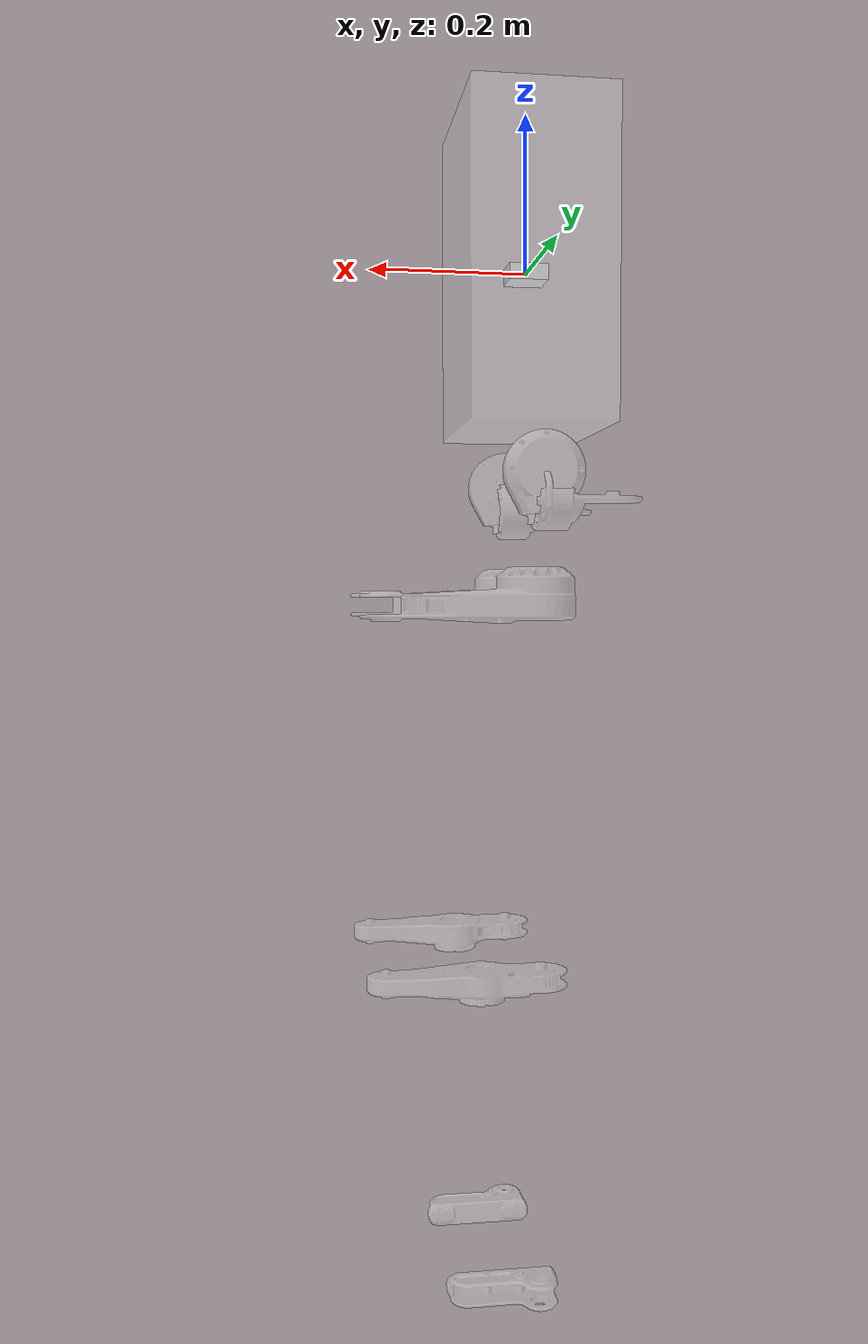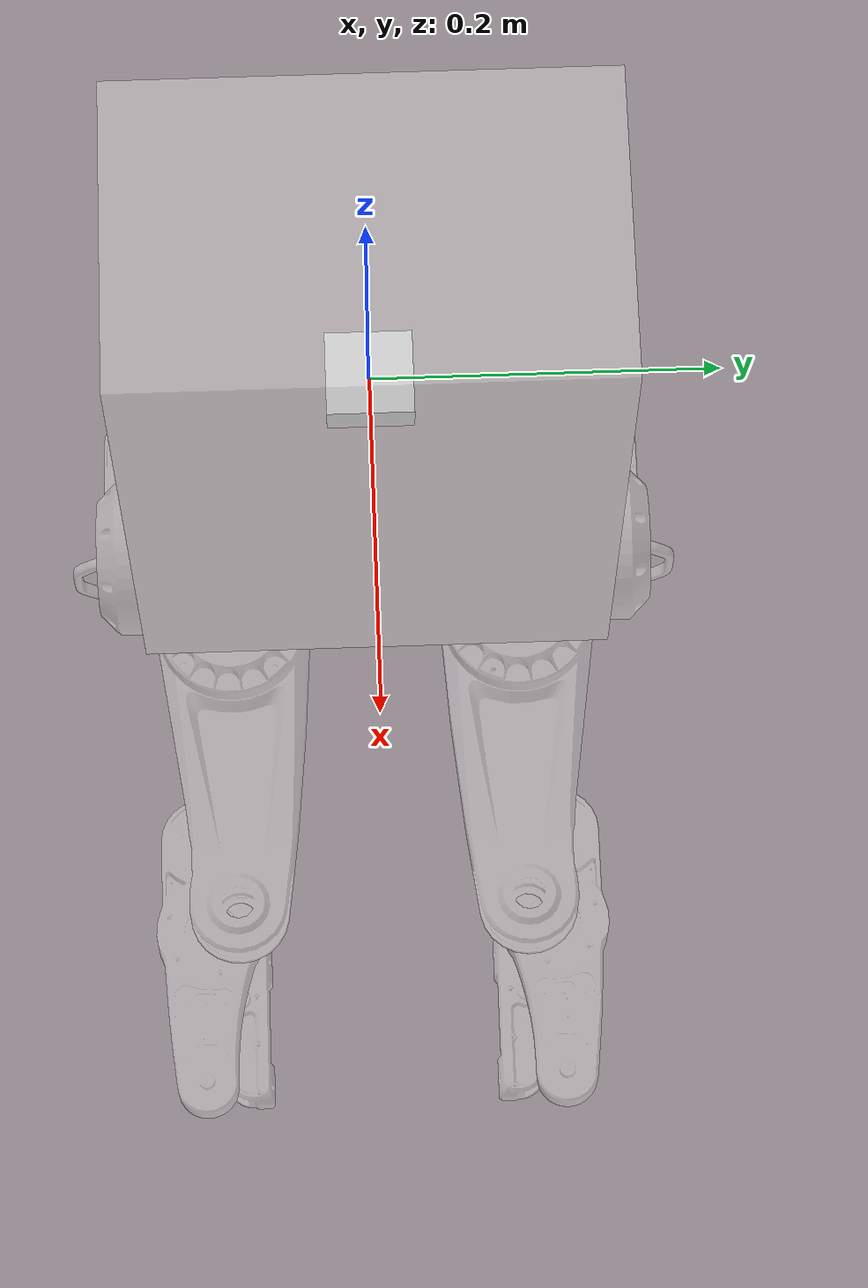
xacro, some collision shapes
<?xml version="1.0"?>

<robot name="gh1" xmlns:xacro="http://www.ros.org/wiki/xacro">
  <xacro:arg name="DEBUG" default="false" />

  <xacro:include filename="$(find gh1)/xacro/gazebo.xacro" />
  <!-- Rotor related joint and link is only for demonstrate location. -->
  <!-- Actually, the rotor will rotate and the joint is not fixed. Reduction ratio should be
  considered. -->

  <material name="black">
    <color rgba="0.0 0.0 0.0 1.0" />
  </material>
  <material name="blue">
    <color rgba="0.0 0.0 0.8 1.0" />
  </material>
  <material name="green">
    <color rgba="0.0 0.8 0.0 1.0" />
  </material>
  <material name="grey">
    <color rgba="0.2 0.2 0.2 1.0" />
  </material>
  <material name="silver">
    <color rgba="0.913725490196 0.913725490196 0.847058823529 1.0" />
  </material>
  <material name="orange">
    <color rgba="0.12 0.15 0.2 1.0" />
  </material>
  <material name="brown">
    <color rgba="0.870588235294 0.811764705882 0.764705882353 1.0" />
  </material>
  <material name="red">
    <color rgba="0.8 0.0 0.0 1.0" />
  </material>
  <material name="white">
    <color rgba="1.0 1.0 1.0 1.0" />
  </material>

  <!-- Debug mode will hung up the robot, use "true" or "false" to switch it. -->
  <xacro:if value="$(arg DEBUG)">
    <link name="world" />
    <joint name="base_static_joint" type="fixed">
      <origin rpy="0 0 0" xyz="0 0 0.0" />
      <parent link="world" />
      <child link="base" />
    </joint>
  </xacro:if>

  <link name="base">
    <visual>
      <origin rpy="0 0 0" xyz="0 0 0" />
      <geometry>
        <box size="0.001 0.001 0.001" />
      </geometry>
    </visual>
  </link>

  <joint name="floating_base" type="fixed">
    <origin rpy="0 0 0" xyz="0 0 0" />
    <parent link="base" />
    <child link="body" />
  </joint>

  <link name="body">
    <inertial>
      <origin
        xyz="-0.0057915 -8.0007E-06 0.16"
        rpy="0 0 0" />
      <mass
        value="23.55" />
      <inertia
        ixx="0.46786000"
        ixy="0"
        ixz="0"
        iyy="0.37758500"
        iyz="0"
        izz="0.21744500" />
    </inertial>
    <visual>
      <origin
        xyz="0 0 0"
        rpy="0 0 0" />
      <geometry>
        <mesh
          filename="/home/wl/Documents/simulation_all_ros2/src/robot_description/gh1/meshes/base_link.STL" />
      </geometry>
      <material
        name="">
        <color
          rgba="1 1 1 0.3" />
      </material>
    </visual>
    <!-- trunk -->
    <collision>
      <origin
        xyz="0 0 0"
        rpy="0 0 0" />
      <geometry>
        <box size="0.18 0.28 0.4" />
      </geometry>
    </collision>
    <!-- upper right arm -->
    <collision>
      <origin
        xyz="0 -0.24 0"
        rpy="-0.15 0 0" />
      <geometry>
        <cylinder radius="0.01" length="0.28" />
      </geometry>
    </collision>
    <!-- upper left arm -->
    <collision>
      <origin
        xyz="0 0.24 0"
        rpy="0.15 0 0" />
      <geometry>
        <cylinder radius="0.01" length="0.28" />
      </geometry>
    </collision>
    <!-- lower right arm -->
    <collision>
      <origin
        xyz="0.06 -0.3 -0.3"
        rpy="-0.3 -0.45 0" />
      <geometry>
        <cylinder radius="0.01" length="0.28" />
      </geometry>
    </collision>
    <!-- lower left arm -->
    <collision>
      <origin
        xyz="0.06 0.3 -0.3"
        rpy="0.3 -0.45 0" />
      <geometry>
        <cylinder radius="0.01" length="0.28" />
      </geometry>
    </collision>
  </link>

  <joint name="z_joint_imu" type="fixed">
    <origin xyz="-0.0 0 -0.0" rpy="0 0 0" />
    <parent link="body" />
    <child link="imu_link" />
  </joint>

  <link name="imu_link">
    <visual>
      <origin xyz="-0.0 0 -0.0" rpy="0 0 0" />
      <geometry>
        <box size="0.05 0.05 0.02" />
      </geometry>
      <material name="">
        <color rgba="0.75294 0.75294 0.75294 1" />
      </material>
    </visual>
  </link>

  <joint
    name="l_hip_roll"
    type="revolute">
    <origin
      xyz="-0.08275 0.135 -0.2975"
      rpy="0 0 0" />
    <parent
      link="body" />
    <child
      link="l_thigh_roll" />
    <axis
      xyz="1 0 0" />
    <limit
      lower="-0.17"
      upper="1.05"
      effort="120"
      velocity="20.92" />
  </joint>

  <link
    name="l_thigh_roll">
    <inertial>
      <origin
        xyz="0.078159 0.0 0.003801"
        rpy="0 0 0" />
      <mass
        value="2.19" />
      <inertia
        ixx="0.00262800"
        ixy="0"
        ixz="0"
        iyy="0.00262800"
        iyz="0"
        izz="0.00394200" />
    </inertial>
    <visual>
      <origin
        xyz="0 0 0"
        rpy="0 0 0" />
      <geometry>
        <mesh
          filename="/home/wl/Documents/simulation_all_ros2/src/robot_description/gh1/meshes/L1_link.STL" />
      </geometry>
      <material
        name="">
        <color
          rgba="1 1 1 0.3" />
      </material>
    </visual>
    <collision>
      <origin
        xyz="0.085 0 0"
        rpy="0 0 0" />
      <geometry>
        <cylinder radius="0.06" length="0.06" />
      </geometry>
    </collision>
  </link>

  <joint
    name="l_hip_yaw"
    type="revolute">
    <origin
      xyz="0.087 0 -0.015"
      rpy="0 0 0" />
    <parent link="l_thigh_roll" />
    <child link="l_thigh_yaw" />
    <axis
      xyz="0 0 1" />
    <limit
      lower="-0.1"
      upper="0.1"
      effort="70"
      velocity="12.552" />
  </joint>

  <link
    name="l_thigh_yaw">
    <inertial>
      <origin
        xyz="-1.5406E-05 -0.039347 -0.093587"
        rpy="0 0 0" />
      <mass
        value="2.72" />
      <inertia
        ixx="0.00754800"
        ixy="0"
        ixz="0"
        iyy="0.00754800"
        iyz="0"
        izz="0.00489600" />
    </inertial>
    <visual>
      <origin
        xyz="0 0 0"
        rpy="0 0 0" />
      <geometry>
        <mesh
          filename="/home/wl/Documents/simulation_all_ros2/src/robot_description/gh1/meshes/L2_link.STL" />
      </geometry>
      <material
        name="">
        <color
          rgba="1 1 1 0.3" />
      </material>
    </visual>
    <collision>
      <origin
        xyz="0 -0.01 -0.13"
        rpy="-1.57 0 0" />
      <geometry>
        <cylinder radius="0.06" length="0.15" />
      </geometry>
    </collision>
  </link>

  <joint name="l_hip_pitch" type="revolute">
    <origin
      xyz="0 -0.041 -0.127"
      rpy="0 0 0" />
    <parent link="l_thigh_yaw" />
    <child link="l_thigh_pitch" />
    <axis
      xyz="0 1 0" />
    <limit
      lower="-1.75"
      upper="1.75"
      effort="120"
      velocity="20.92" />
  </joint>

  <link name="l_thigh_pitch">
    <inertial>
      <origin
        xyz="0.0075478 0.052643 -0.12044"
        rpy="0 0 0" />
      <mass
        value="4.07" />
      <inertia
        ixx="0.04239583"
        ixy="0"
        ixz="0"
        iyy="0.04320983"
        iyz="0"
        izz="0.00250983" />
    </inertial>
    <visual>
      <origin
        xyz="0 0 0"
        rpy="0 0 0" />
      <geometry>
        <mesh
          filename="/home/wl/Documents/simulation_all_ros2/src/robot_description/gh1/meshes/L3_link.STL" />
      </geometry>
      <material
        name="">
        <color
          rgba="1 1 1 0.3" />
      </material>
    </visual>
    <collision>
      <origin
        xyz="0.02 0.04 -0.25"
        rpy="0 0 0" />
      <geometry>
        <box size="0.07 0.05 0.35"/>
      </geometry>
    </collision>
  </link>

  <joint name="l_knee_pitch" type="revolute">
    <origin
      xyz="0 0.041 -0.42"
      rpy="0 0 0" />
    <parent link="l_thigh_pitch" />
    <child link="l_shank_pitch" />
    <axis
      xyz="0 1 0" />
    <limit
      lower="0"
      upper="2.23"
      effort="120"
      velocity="20.92" />
  </joint>

  <link name="l_shank_pitch">
    <inertial>
      <origin
        xyz="0.0023769 -0.0025816 -0.15422"
        rpy="0 0 0" />
      <mass
        value="1.88" />
      <inertia
        ixx="0.01617442"
        ixy="0"
        ixz="0"
        iyy="0.01660667"
        iyz="0"
        izz="0.00069576" />
    </inertial>
    <visual>
      <origin
        xyz="0 0 0"
        rpy="0 0 0" />
      <geometry>
        <mesh
          filename="/home/wl/Documents/simulation_all_ros2/src/robot_description/gh1/meshes/L4_link.STL" />
      </geometry>
      <material
        name="">
        <color
          rgba="1 1 1 0.3" />
      </material>
    </visual>
    <collision>
      <origin
        xyz="0 0 -0.22"
        rpy="0 0 0" />
      <geometry>
        <box size="0.06 0.029 0.32"/>
      </geometry>
    </collision>
  </link>

  <joint name="l_ankle_pitch" type="revolute">
    <origin
      xyz="0 0 -0.4"
      rpy="0 0 0" />
    <parent link="l_shank_pitch" />
    <child link="l_foot_pitch" />
    <axis
      xyz="0 1 0" />
    <limit
      lower="-1.08"
      upper="0.59"
      effort="22"
      velocity="46.024" />
  </joint>

  <link name="l_foot_pitch">
    <inertial>
      <origin
        xyz="0.022131 0.0001084 -0.040348"
        rpy="0 0 0" />
      <mass
        value="0.55" />
      <inertia
        ixx="0.00013292"
        ixy="0"
        ixz="0"
        iyy="0.00288292"
        iyz="0"
        izz="0.00297917" />
    </inertial>
    <visual>
      <origin
        xyz="0 0 0"
        rpy="0 0 0" />
      <geometry>
        <mesh
          filename="/home/wl/Documents/simulation_all_ros2/src/robot_description/gh1/meshes/L5_link.STL" />
      </geometry>
      <material
        name="">
        <color
          rgba="1 1 1 0.3" />
      </material>
    </visual>
    <collision>
      <origin
        xyz="0.02 0 -0.04"
        rpy="0 1.57 0" />
      <geometry>
        <cylinder radius="0.015" length="0.22"/>
      </geometry>
    </collision>
    <collision>
      <origin
        xyz="0.13 0 -0.04"
        rpy="0 0 0" />
      <geometry>
        <sphere radius="0.015"/>
      </geometry>
    </collision>
    <collision>
      <origin
        xyz="-0.09 0 -0.04"
        rpy="0 0 0" />
      <geometry>
        <sphere radius="0.015"/>
      </geometry>
    </collision>
  </link>

  <link name="r_thigh_roll">
    <inertial>
      <origin
        xyz="0.078159 0.0 0.003801"
        rpy="0 0 0" />
      <mass
        value="2.19" />
      <inertia
        ixx="0.00262800"
        ixy="0"
        ixz="0"
        iyy="0.00262800"
        iyz="0"
        izz="0.00394200" />
    </inertial>
    <visual>
      <origin
        xyz="0 0 0"
        rpy="0 0 0" />
      <geometry>
        <mesh
          filename="/home/wl/Documents/simulation_all_ros2/src/robot_description/gh1/meshes/R1_link.STL" />
      </geometry>
      <material
        name="">
        <color
          rgba="1 1 1 0.3" />
      </material>
    </visual>
    <collision>
      <origin
        xyz="0.085 0 0"
        rpy="0 0 0" />
      <geometry>
        <cylinder radius="0.06" length="0.06" />
      </geometry>
    </collision>
  </link>

  <joint name="r_hip_roll" type="revolute">
    <origin
      xyz="-0.08275 -0.135 -0.2975"
      rpy="0 0 0" />
    <parent link="body" />
    <child link="r_thigh_roll" />
    <axis
      xyz="1 0 0" />
    <limit
      lower="-1.05"
      upper="0.17"
      effort="120"
      velocity="20.92" />
  </joint>

  <link
    name="r_thigh_yaw">
    <inertial>
      <origin
        xyz="-1.5311E-05 0.039347 -0.093587"
        rpy="0 0 0" />
      <mass
        value="2.72" />
      <inertia
        ixx="0.00754800"
        ixy="0"
        ixz="0"
        iyy="0.00754800"
        iyz="0"
        izz="0.00489600" />
    </inertial>
    <visual>
      <origin
        xyz="0 0 0"
        rpy="0 0 0" />
      <geometry>
        <mesh
          filename="/home/wl/Documents/simulation_all_ros2/src/robot_description/gh1/meshes/R2_link.STL" />
      </geometry>
      <material
        name="">
        <color
          rgba="1 1 1 0.3" />
      </material>
    </visual>
    <collision>
      <origin
        xyz="0 0.01 -0.13"
        rpy="1.57 0 0" />
      <geometry>
        <cylinder radius="0.06" length="0.15" />
      </geometry>
    </collision>
  </link>

  <joint name="r_hip_yaw" type="revolute">
    <origin
      xyz="0.087 0 -0.015"
      rpy="0 0 0" />
    <parent link="r_thigh_roll" />
    <child link="r_thigh_yaw" />
    <axis
      xyz="0 0 1" />
    <limit
      lower="-0.1"
      upper="0.1"
      effort="70"
      velocity="12.552" />
  </joint>

  <link
    name="r_thigh_pitch">
    <inertial>
      <origin
        xyz="0.0075476 -0.052643 -0.12045"
        rpy="0 0 0" />
      <mass
        value="4.07" />
      <inertia
        ixx="0.04239583"
        ixy="0"
        ixz="0"
        iyy="0.04320983"
        iyz="0"
        izz="0.00250983" />
    </inertial>
    <visual>
      <origin
        xyz="0 0 0"
        rpy="0 0 0" />
      <geometry>
        <mesh
          filename="/home/wl/Documents/simulation_all_ros2/src/robot_description/gh1/meshes/R3_link.STL" />
      </geometry>
      <material
        name="">
        <color
          rgba="1 1 1 0.3" />
      </material>
    </visual>
    <collision>
      <origin
        xyz="0.02 -0.04 -0.25"
        rpy="0 0 0" />
      <geometry>
        <box size="0.07 0.05 0.35"/>
      </geometry>
    </collision>
  </link>

  <joint name="r_hip_pitch" type="revolute">
    <origin
      xyz="0 0.041 -0.127"
      rpy="0 0 0" />
    <parent link="r_thigh_yaw" />
    <child link="r_thigh_pitch" />
    <axis
      xyz="0 1 0" />
    <limit
      lower="-1.75"
      upper="1.75"
      effort="120"
      velocity="20.92" />
  </joint>

  <link name="r_shank_pitch">
    <inertial>
      <origin
        xyz="0.0023769 0.0025816 -0.15422"
        rpy="0 0 0" />
      <mass
        value="1.88" />
      <inertia
        ixx="0.01617442"
        ixy="0"
        ixz="0"
        iyy="0.01660667"
        iyz="0"
        izz="0.00069576" />
    </inertial>
    <visual>
      <origin
        xyz="0 0 0"
        rpy="0 0 0" />
      <geometry>
        <mesh
          filename="/home/wl/Documents/simulation_all_ros2/src/robot_description/gh1/meshes/R4_link.STL" />
      </geometry>
      <material
        name="">
        <color
          rgba="1 1 1 0.3" />
      </material>
    </visual>
    <collision>
      <origin
        xyz="0 0 -0.22"
        rpy="0 0 0" />
      <geometry>
        <box size="0.06 0.029 0.32"/>
      </geometry>
    </collision>
  </link>

  <joint name="r_knee_pitch" type="revolute">
    <origin
      xyz="0 -0.041 -0.42"
      rpy="0 0 0" />
    <parent link="r_thigh_pitch" />
    <child link="r_shank_pitch" />
    <axis
      xyz="0 1 0" />
    <limit
      lower="0"
      upper="2.23"
      effort="120"
      velocity="20.92" />
  </joint>

  <link name="r_foot_pitch">
    <inertial>
      <origin
        xyz="0.022131 -0.0001084 -0.040348"
        rpy="0 0 0" />
      <mass
        value="0.55" />
      <inertia
        ixx="0.00013292"
        ixy="0"
        ixz="0"
        iyy="0.00288292"
        iyz="0"
        izz="0.00297917" />
    </inertial>
    <visual>
      <origin
        xyz="0 0 0"
        rpy="0 0 0" />
      <geometry>
        <mesh
          filename="/home/wl/Documents/simulation_all_ros2/src/robot_description/gh1/meshes/R5_link.STL" />
      </geometry>
      <material
        name="">
        <color
          rgba="1 1 1 0.3" />
      </material>
    </visual>
    <collision>
      <origin
        xyz="0.02 0 -0.04"
        rpy="0 1.57 0" />
      <geometry>
        <cylinder radius="0.015" length="0.22"/>
      </geometry>
    </collision>
    <collision>
      <origin
        xyz="0.13 0 -0.04"
        rpy="0 0 0" />
      <geometry>
        <sphere radius="0.015"/>
      </geometry>
    </collision>
    <collision>
      <origin
        xyz="-0.09 0 -0.04"
        rpy="0 0 0" />
      <geometry>
        <sphere radius="0.015"/>
      </geometry>
    </collision>
  </link>

  <joint name="r_ankle_pitch" type="revolute">
    <origin
      xyz="0 0 -0.4"
      rpy="0 0 0" />
    <parent link="r_shank_pitch" />
    <child link="r_foot_pitch" />
    <axis
      xyz="0 1 0" />
    <limit
      lower="-1.08"
      upper="0.59"
      effort="22"
      velocity="46.024" />
  </joint>

  <ros2_control name="gh1_gazebo" type="system">
    <hardware>
      <plugin>gazebo_ros2_control/GazeboSystem</plugin>
    </hardware>
    <joint name="l_hip_roll">
      <command_interface name="effort">
      </command_interface>
      <state_interface name="position"/>
      <state_interface name="velocity"/>
      <state_interface name="effort"/>
    </joint>
    <joint name="l_hip_yaw">
      <command_interface name="effort">
      </command_interface>
      <state_interface name="position"/>
      <state_interface name="velocity"/>
      <state_interface name="effort"/>
    </joint>
    <joint name="l_hip_pitch">
      <command_interface name="effort">
      </command_interface>
      <state_interface name="position"/>
      <state_interface name="velocity"/>
      <state_interface name="effort"/>
    </joint>
    <joint name="l_knee_pitch">
      <command_interface name="effort">
      </command_interface>
      <state_interface name="position"/>
      <state_interface name="velocity"/>
      <state_interface name="effort"/>
    </joint>
    <joint name="l_ankle_pitch">
      <command_interface name="effort">
      </command_interface>
      <state_interface name="position"/>
      <state_interface name="velocity"/>
      <state_interface name="effort"/>
    </joint>
    <joint name="r_hip_roll">
      <command_interface name="effort">
      </command_interface>
      <state_interface name="position"/>
      <state_interface name="velocity"/>
      <state_interface name="effort"/>
    </joint>
    <joint name="r_hip_yaw">
      <command_interface name="effort">
      </command_interface>
      <state_interface name="position"/>
      <state_interface name="velocity"/>
      <state_interface name="effort"/>
    </joint>
    <joint name="r_hip_pitch">
      <command_interface name="effort">
      </command_interface>
      <state_interface name="position"/>
      <state_interface name="velocity"/>
      <state_interface name="effort"/>
    </joint>
    <joint name="r_knee_pitch">
      <command_interface name="effort">
      </command_interface>
      <state_interface name="position"/>
      <state_interface name="velocity"/>
      <state_interface name="effort"/>
    </joint>
    <joint name="r_ankle_pitch">
      <command_interface name="effort">
      </command_interface>
      <state_interface name="position"/>
      <state_interface name="velocity"/>
      <state_interface name="effort"/>
    </joint>
  </ros2_control>

  <gazebo>
    <plugin name="gazebo_ros2_control" filename="libgazebo_ros2_control.so">
      <parameters>$(find gh1)/config/robot_control.yaml</parameters>
    </plugin>
  </gazebo>

</robot>
